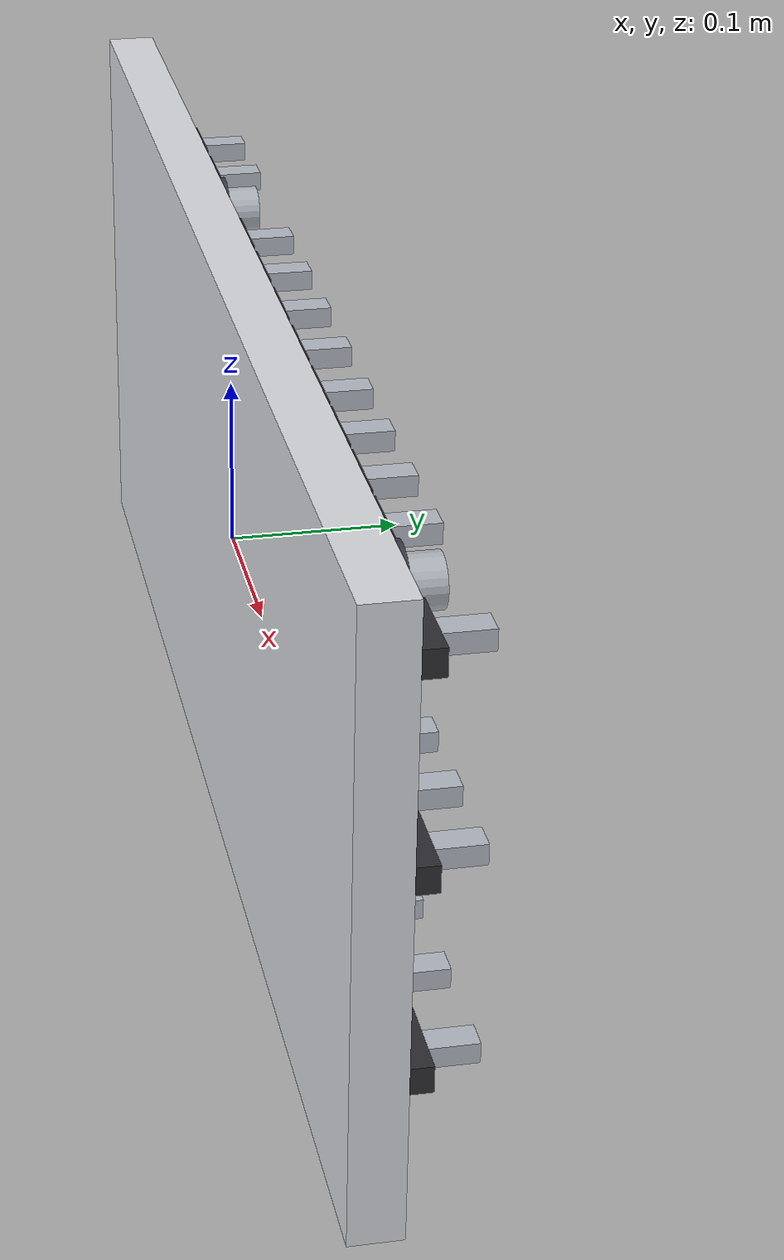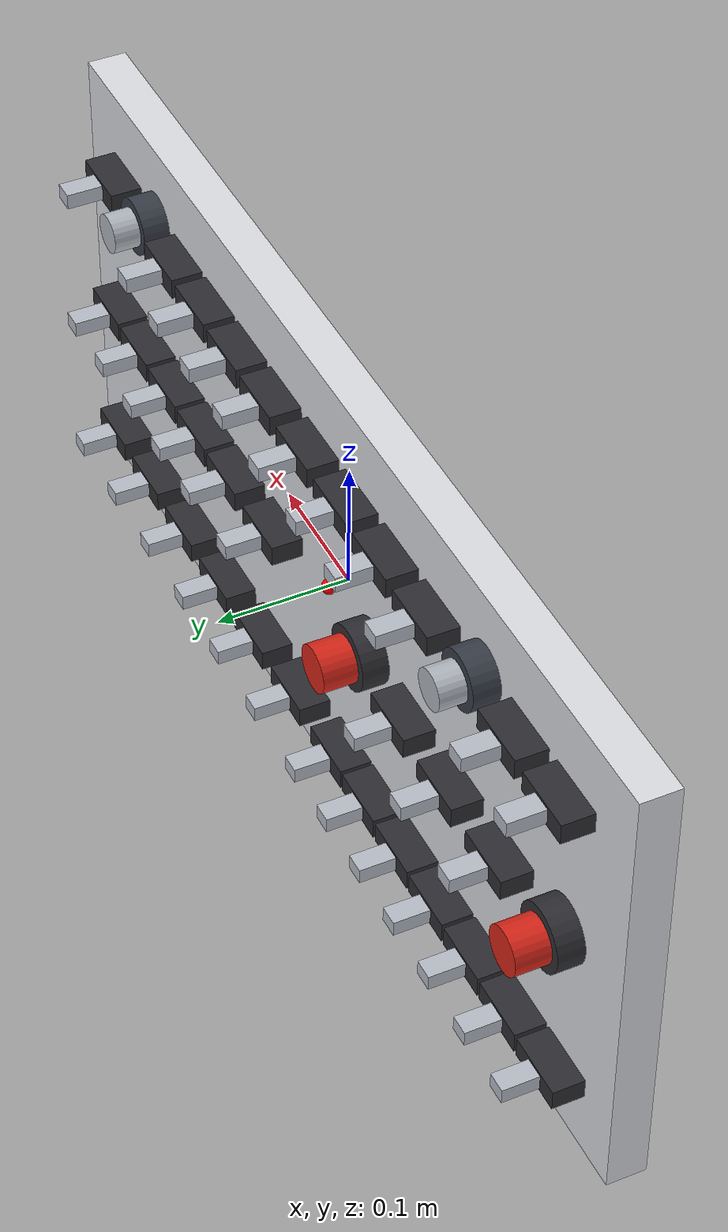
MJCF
<?xml version='1.0' encoding='utf-8'?>
<mujoco model="w2_b2_panel_base">
  <worldbody>
    <body name="panel_mount" pos="0 0 0">
      <geom name="panel_backplate" type="box" pos="0 0 0" size="0.4212 0.015 0.18" rgba="0.86 0.87 0.89 1" contype="1" conaffinity="1" />
      <site name="panel_origin" pos="0 0.015 0" size="0.006" rgba="1 0 0 1" />
      <body name="w2_b2_slot_seq_13" pos="-0.35 0.015 0.12" quat="0.7071068 -0.7071068 0 0">
        <body name="w2_b2_seq_13">
          <geom name="seq_13_base__r0_c1" type="box" pos="0 0 0.012" size="0.025 0.008 0.012" rgba="0.18 0.18 0.20 1" />
          <geom name="seq_13_toggle__r0_c1" type="box" pos="0 0 0.032" size="0.008 0.006 0.02" rgba="0.72 0.74 0.78 1" />
        </body>
      </body>
      <body name="w2_b2_slot_seq_12" pos="-0.29 0.015 0.12" quat="0.7071068 -0.7071068 0 0">
        <body name="w2_b2_seq_12">
          <geom name="seq_12_base__r0_c3" type="box" pos="0 0 0.012" size="0.025 0.008 0.012" rgba="0.18 0.18 0.20 1" />
          <geom name="seq_12_toggle__r0_c3" type="box" pos="0 0 0.032" size="0.008 0.006 0.02" rgba="0.72 0.74 0.78 1" />
        </body>
      </body>
      <body name="w2_b2_slot_seq_11" pos="-0.23 0.015 0.12" quat="0.7071068 -0.7071068 0 0">
        <body name="w2_b2_seq_11">
          <geom name="seq_11_base__r0_c6" type="cylinder" pos="0 0 0.01" size="0.022 0.01" rgba="0.22 0.24 0.28 1" />
          <geom name="seq_11_cap__r0_c6" type="cylinder" pos="0 0 0.026" size="0.015 0.014" rgba="0.70 0.72 0.75 1" />
        </body>
      </body>
      <body name="w2_b2_slot_seq_10" pos="-0.17 0.015 0.12" quat="0.7071068 -0.7071068 0 0">
        <body name="w2_b2_seq_10">
          <geom name="seq_10_base__r0_c9" type="box" pos="0 0 0.012" size="0.025 0.008 0.012" rgba="0.18 0.18 0.20 1" />
          <geom name="seq_10_toggle__r0_c9" type="box" pos="0 0 0.032" size="0.008 0.006 0.02" rgba="0.72 0.74 0.78 1" />
        </body>
      </body>
      <body name="w2_b2_slot_seq_09" pos="-0.11 0.015 0.12" quat="0.7071068 -0.7071068 0 0">
        <body name="w2_b2_seq_09">
          <geom name="seq_09_base__r0_c12" type="box" pos="0 0 0.012" size="0.025 0.008 0.012" rgba="0.18 0.18 0.20 1" />
          <geom name="seq_09_toggle__r0_c12" type="box" pos="0 0 0.032" size="0.008 0.006 0.02" rgba="0.72 0.74 0.78 1" />
        </body>
      </body>
      <body name="w2_b2_slot_seq_08" pos="-0.05 0.015 0.12" quat="0.7071068 -0.7071068 0 0">
        <body name="w2_b2_seq_08">
          <geom name="seq_08_base__r0_c15" type="box" pos="0 0 0.012" size="0.025 0.008 0.012" rgba="0.18 0.18 0.20 1" />
          <geom name="seq_08_toggle__r0_c15" type="box" pos="0 0 0.032" size="0.008 0.006 0.02" rgba="0.72 0.74 0.78 1" />
        </body>
      </body>
      <body name="w2_b2_slot_seq_07" pos="0.01 0.015 0.12" quat="0.7071068 -0.7071068 0 0">
        <body name="w2_b2_seq_07">
          <geom name="seq_07_base__r0_c17" type="box" pos="0 0 0.012" size="0.025 0.008 0.012" rgba="0.18 0.18 0.20 1" />
          <geom name="seq_07_toggle__r0_c17" type="box" pos="0 0 0.032" size="0.008 0.006 0.02" rgba="0.72 0.74 0.78 1" />
        </body>
      </body>
      <body name="w2_b2_slot_seq_06" pos="0.07 0.015 0.12" quat="0.7071068 -0.7071068 0 0">
        <body name="w2_b2_seq_06">
          <geom name="seq_06_base__r0_c19" type="box" pos="0 0 0.012" size="0.025 0.008 0.012" rgba="0.18 0.18 0.20 1" />
          <geom name="seq_06_toggle__r0_c19" type="box" pos="0 0 0.032" size="0.008 0.006 0.02" rgba="0.72 0.74 0.78 1" />
        </body>
      </body>
      <body name="w2_b2_slot_seq_05" pos="0.126 0.015 0.12" quat="0.7071068 -0.7071068 0 0">
        <body name="w2_b2_seq_05">
          <geom name="seq_05_base__r0_c21" type="box" pos="0 0 0.012" size="0.025 0.008 0.012" rgba="0.18 0.18 0.20 1" />
          <geom name="seq_05_toggle__r0_c21" type="box" pos="0 0 0.032" size="0.008 0.006 0.02" rgba="0.72 0.74 0.78 1" />
        </body>
      </body>
      <body name="w2_b2_slot_seq_04" pos="0.182 0.015 0.12" quat="0.7071068 -0.7071068 0 0">
        <body name="w2_b2_seq_04">
          <geom name="seq_04_base__r0_c24" type="box" pos="0 0 0.012" size="0.025 0.008 0.012" rgba="0.18 0.18 0.20 1" />
          <geom name="seq_04_toggle__r0_c24" type="box" pos="0 0 0.032" size="0.008 0.006 0.02" rgba="0.72 0.74 0.78 1" />
        </body>
      </body>
      <body name="w2_b2_slot_seq_03" pos="0.238 0.015 0.12" quat="0.7071068 -0.7071068 0 0">
        <body name="w2_b2_seq_03">
          <geom name="seq_03_base__r0_c27" type="box" pos="0 0 0.012" size="0.025 0.008 0.012" rgba="0.18 0.18 0.20 1" />
          <geom name="seq_03_toggle__r0_c27" type="box" pos="0 0 0.032" size="0.008 0.006 0.02" rgba="0.72 0.74 0.78 1" />
        </body>
      </body>
      <body name="w2_b2_slot_seq_02" pos="0.294 0.015 0.12" quat="0.7071068 -0.7071068 0 0">
        <body name="w2_b2_seq_02">
          <geom name="seq_02_base__r0_c30" type="cylinder" pos="0 0 0.01" size="0.022 0.01" rgba="0.22 0.24 0.28 1" />
          <geom name="seq_02_cap__r0_c30" type="cylinder" pos="0 0 0.026" size="0.015 0.014" rgba="0.70 0.72 0.75 1" />
        </body>
      </body>
      <body name="w2_b2_slot_seq_01" pos="0.35 0.015 0.12" quat="0.7071068 -0.7071068 0 0">
        <body name="w2_b2_seq_01">
          <geom name="seq_01_base__r0_c32" type="box" pos="0 0 0.012" size="0.025 0.008 0.012" rgba="0.18 0.18 0.20 1" />
          <geom name="seq_01_toggle__r0_c32" type="box" pos="0 0 0.032" size="0.008 0.006 0.02" rgba="0.72 0.74 0.78 1" />
        </body>
      </body>
      <body name="w2_b2_slot_seq_24" pos="-0.35 0.015 0" quat="0.7071068 -0.7071068 0 0">
        <body name="w2_b2_seq_24">
          <geom name="seq_24_base__r1_c1" type="cylinder" pos="0 0 0.01" size="0.025 0.01" rgba="0.18 0.18 0.20 1" />
          <geom name="seq_24_button__r1_c1" type="cylinder" pos="0 0 0.028" size="0.018 0.018" rgba="0.85 0.15 0.10 1" />
        </body>
      </body>
      <body name="w2_b2_slot_seq_23" pos="-0.28 0.015 0" quat="0.7071068 -0.7071068 0 0">
        <body name="w2_b2_seq_23">
          <geom name="seq_23_base__r1_c4" type="box" pos="0 0 0.012" size="0.025 0.008 0.012" rgba="0.18 0.18 0.20 1" />
          <geom name="seq_23_toggle__r1_c4" type="box" pos="0 0 0.032" size="0.008 0.006 0.02" rgba="0.72 0.74 0.78 1" />
        </body>
      </body>
      <body name="w2_b2_slot_seq_22" pos="-0.21 0.015 0" quat="0.7071068 -0.7071068 0 0">
        <body name="w2_b2_seq_22">
          <geom name="seq_22_base__r1_c7" type="box" pos="0 0 0.012" size="0.025 0.008 0.012" rgba="0.18 0.18 0.20 1" />
          <geom name="seq_22_toggle__r1_c7" type="box" pos="0 0 0.032" size="0.008 0.006 0.02" rgba="0.72 0.74 0.78 1" />
        </body>
      </body>
      <body name="w2_b2_slot_seq_21" pos="-0.14 0.015 0" quat="0.7071068 -0.7071068 0 0">
        <body name="w2_b2_seq_21">
          <geom name="seq_21_base__r1_c11" type="box" pos="0 0 0.012" size="0.025 0.008 0.012" rgba="0.18 0.18 0.20 1" />
          <geom name="seq_21_toggle__r1_c11" type="box" pos="0 0 0.032" size="0.008 0.006 0.02" rgba="0.72 0.74 0.78 1" />
        </body>
      </body>
      <body name="w2_b2_slot_seq_20" pos="-0.07 0.015 0" quat="0.7071068 -0.7071068 0 0">
        <body name="w2_b2_seq_20">
          <geom name="seq_20_base__r1_c14" type="cylinder" pos="0 0 0.01" size="0.025 0.01" rgba="0.18 0.18 0.20 1" />
          <geom name="seq_20_button__r1_c14" type="cylinder" pos="0 0 0.028" size="0.018 0.018" rgba="0.85 0.15 0.10 1" />
        </body>
      </body>
      <body name="w2_b2_slot_seq_19" pos="0.07 0.015 0" quat="0.7071068 -0.7071068 0 0">
        <body name="w2_b2_seq_19">
          <geom name="seq_19_base__r1_c19" type="box" pos="0 0 0.012" size="0.025 0.008 0.012" rgba="0.18 0.18 0.20 1" />
          <geom name="seq_19_toggle__r1_c19" type="box" pos="0 0 0.032" size="0.008 0.006 0.02" rgba="0.72 0.74 0.78 1" />
        </body>
      </body>
      <body name="w2_b2_slot_seq_18" pos="0.134 0.015 0" quat="0.7071068 -0.7071068 0 0">
        <body name="w2_b2_seq_18">
          <geom name="seq_18_base__r1_c22" type="box" pos="0 0 0.012" size="0.025 0.008 0.012" rgba="0.18 0.18 0.20 1" />
          <geom name="seq_18_toggle__r1_c22" type="box" pos="0 0 0.032" size="0.008 0.006 0.02" rgba="0.72 0.74 0.78 1" />
        </body>
      </body>
      <body name="w2_b2_slot_seq_17" pos="0.188 0.015 0" quat="0.7071068 -0.7071068 0 0">
        <body name="w2_b2_seq_17">
          <geom name="seq_17_base__r1_c25" type="box" pos="0 0 0.012" size="0.025 0.008 0.012" rgba="0.18 0.18 0.20 1" />
          <geom name="seq_17_toggle__r1_c25" type="box" pos="0 0 0.032" size="0.008 0.006 0.02" rgba="0.72 0.74 0.78 1" />
        </body>
      </body>
      <body name="w2_b2_slot_seq_16" pos="0.242 0.015 0" quat="0.7071068 -0.7071068 0 0">
        <body name="w2_b2_seq_16">
          <geom name="seq_16_base__r1_c28" type="box" pos="0 0 0.012" size="0.025 0.008 0.012" rgba="0.18 0.18 0.20 1" />
          <geom name="seq_16_toggle__r1_c28" type="box" pos="0 0 0.032" size="0.008 0.006 0.02" rgba="0.72 0.74 0.78 1" />
        </body>
      </body>
      <body name="w2_b2_slot_seq_15" pos="0.296 0.015 0" quat="0.7071068 -0.7071068 0 0">
        <body name="w2_b2_seq_15">
          <geom name="seq_15_base__r1_c31" type="box" pos="0 0 0.012" size="0.025 0.008 0.012" rgba="0.18 0.18 0.20 1" />
          <geom name="seq_15_toggle__r1_c31" type="box" pos="0 0 0.032" size="0.008 0.006 0.02" rgba="0.72 0.74 0.78 1" />
        </body>
      </body>
      <body name="w2_b2_slot_seq_14" pos="0.35 0.015 0" quat="0.7071068 -0.7071068 0 0">
        <body name="w2_b2_seq_14">
          <geom name="seq_14_base__r1_c32" type="box" pos="0 0 0.012" size="0.025 0.008 0.012" rgba="0.18 0.18 0.20 1" />
          <geom name="seq_14_toggle__r1_c32" type="box" pos="0 0 0.032" size="0.008 0.006 0.02" rgba="0.72 0.74 0.78 1" />
        </body>
      </body>
      <body name="w2_b2_slot_seq_37" pos="-0.3612 0.015 -0.12" quat="0.7071068 -0.7071068 0 0">
        <body name="w2_b2_seq_37">
          <geom name="seq_37_base__r2_c0" type="box" pos="0 0 0.012" size="0.025 0.008 0.012" rgba="0.18 0.18 0.20 1" />
          <geom name="seq_37_toggle__r2_c0" type="box" pos="0 0 0.032" size="0.008 0.006 0.02" rgba="0.72 0.74 0.78 1" />
        </body>
      </body>
      <body name="w2_b2_slot_seq_36" pos="-0.3082 0.015 -0.12" quat="0.7071068 -0.7071068 0 0">
        <body name="w2_b2_seq_36">
          <geom name="seq_36_base__r2_c2" type="box" pos="0 0 0.012" size="0.025 0.008 0.012" rgba="0.18 0.18 0.20 1" />
          <geom name="seq_36_toggle__r2_c2" type="box" pos="0 0 0.032" size="0.008 0.006 0.02" rgba="0.72 0.74 0.78 1" />
        </body>
      </body>
      <body name="w2_b2_slot_seq_35" pos="-0.2552 0.015 -0.12" quat="0.7071068 -0.7071068 0 0">
        <body name="w2_b2_seq_35">
          <geom name="seq_35_base__r2_c5" type="box" pos="0 0 0.012" size="0.025 0.008 0.012" rgba="0.18 0.18 0.20 1" />
          <geom name="seq_35_toggle__r2_c5" type="box" pos="0 0 0.032" size="0.008 0.006 0.02" rgba="0.72 0.74 0.78 1" />
        </body>
      </body>
      <body name="w2_b2_slot_seq_34" pos="-0.2022 0.015 -0.12" quat="0.7071068 -0.7071068 0 0">
        <body name="w2_b2_seq_34">
          <geom name="seq_34_base__r2_c8" type="box" pos="0 0 0.012" size="0.025 0.008 0.012" rgba="0.18 0.18 0.20 1" />
          <geom name="seq_34_toggle__r2_c8" type="box" pos="0 0 0.032" size="0.008 0.006 0.02" rgba="0.72 0.74 0.78 1" />
        </body>
      </body>
      <body name="w2_b2_slot_seq_33" pos="-0.1492 0.015 -0.12" quat="0.7071068 -0.7071068 0 0">
        <body name="w2_b2_seq_33">
          <geom name="seq_33_base__r2_c10" type="box" pos="0 0 0.012" size="0.025 0.008 0.012" rgba="0.18 0.18 0.20 1" />
          <geom name="seq_33_toggle__r2_c10" type="box" pos="0 0 0.032" size="0.008 0.006 0.02" rgba="0.72 0.74 0.78 1" />
        </body>
      </body>
      <body name="w2_b2_slot_seq_32" pos="-0.0962 0.015 -0.12" quat="0.7071068 -0.7071068 0 0">
        <body name="w2_b2_seq_32">
          <geom name="seq_32_base__r2_c13" type="box" pos="0 0 0.012" size="0.025 0.008 0.012" rgba="0.18 0.18 0.20 1" />
          <geom name="seq_32_toggle__r2_c13" type="box" pos="0 0 0.032" size="0.008 0.006 0.02" rgba="0.72 0.74 0.78 1" />
        </body>
      </body>
      <body name="w2_b2_slot_seq_31" pos="-0.0432 0.015 -0.12" quat="0.7071068 -0.7071068 0 0">
        <body name="w2_b2_seq_31">
          <geom name="seq_31_base__r2_c16" type="box" pos="0 0 0.012" size="0.025 0.008 0.012" rgba="0.18 0.18 0.20 1" />
          <geom name="seq_31_toggle__r2_c16" type="box" pos="0 0 0.032" size="0.008 0.006 0.02" rgba="0.72 0.74 0.78 1" />
        </body>
      </body>
      <body name="w2_b2_slot_seq_30" pos="0.025 0.015 -0.12" quat="0.7071068 -0.7071068 0 0">
        <body name="w2_b2_seq_30">
          <geom name="seq_30_base__r2_c18" type="box" pos="0 0 0.012" size="0.025 0.008 0.012" rgba="0.18 0.18 0.20 1" />
          <geom name="seq_30_toggle__r2_c18" type="box" pos="0 0 0.032" size="0.008 0.006 0.02" rgba="0.72 0.74 0.78 1" />
        </body>
      </body>
      <body name="w2_b2_slot_seq_29" pos="0.09 0.015 -0.12" quat="0.7071068 -0.7071068 0 0">
        <body name="w2_b2_seq_29">
          <geom name="seq_29_base__r2_c20" type="box" pos="0 0 0.012" size="0.025 0.008 0.012" rgba="0.18 0.18 0.20 1" />
          <geom name="seq_29_toggle__r2_c20" type="box" pos="0 0 0.032" size="0.008 0.006 0.02" rgba="0.72 0.74 0.78 1" />
        </body>
      </body>
      <body name="w2_b2_slot_seq_28" pos="0.155 0.015 -0.12" quat="0.7071068 -0.7071068 0 0">
        <body name="w2_b2_seq_28">
          <geom name="seq_28_base__r2_c23" type="box" pos="0 0 0.012" size="0.025 0.008 0.012" rgba="0.18 0.18 0.20 1" />
          <geom name="seq_28_toggle__r2_c23" type="box" pos="0 0 0.032" size="0.008 0.006 0.02" rgba="0.72 0.74 0.78 1" />
        </body>
      </body>
      <body name="w2_b2_slot_seq_27" pos="0.22 0.015 -0.12" quat="0.7071068 -0.7071068 0 0">
        <body name="w2_b2_seq_27">
          <geom name="seq_27_base__r2_c26" type="box" pos="0 0 0.012" size="0.025 0.008 0.012" rgba="0.18 0.18 0.20 1" />
          <geom name="seq_27_toggle__r2_c26" type="box" pos="0 0 0.032" size="0.008 0.006 0.02" rgba="0.72 0.74 0.78 1" />
        </body>
      </body>
      <body name="w2_b2_slot_seq_26" pos="0.285 0.015 -0.12" quat="0.7071068 -0.7071068 0 0">
        <body name="w2_b2_seq_26">
          <geom name="seq_26_base__r2_c29" type="box" pos="0 0 0.012" size="0.025 0.008 0.012" rgba="0.18 0.18 0.20 1" />
          <geom name="seq_26_toggle__r2_c29" type="box" pos="0 0 0.032" size="0.008 0.006 0.02" rgba="0.72 0.74 0.78 1" />
        </body>
      </body>
      <body name="w2_b2_slot_seq_25" pos="0.35 0.015 -0.12" quat="0.7071068 -0.7071068 0 0">
        <body name="w2_b2_seq_25">
          <geom name="seq_25_base__r2_c32" type="box" pos="0 0 0.012" size="0.025 0.008 0.012" rgba="0.18 0.18 0.20 1" />
          <geom name="seq_25_toggle__r2_c32" type="box" pos="0 0 0.032" size="0.008 0.006 0.02" rgba="0.72 0.74 0.78 1" />
        </body>
      </body>
    </body>
  </worldbody>
</mujoco>
